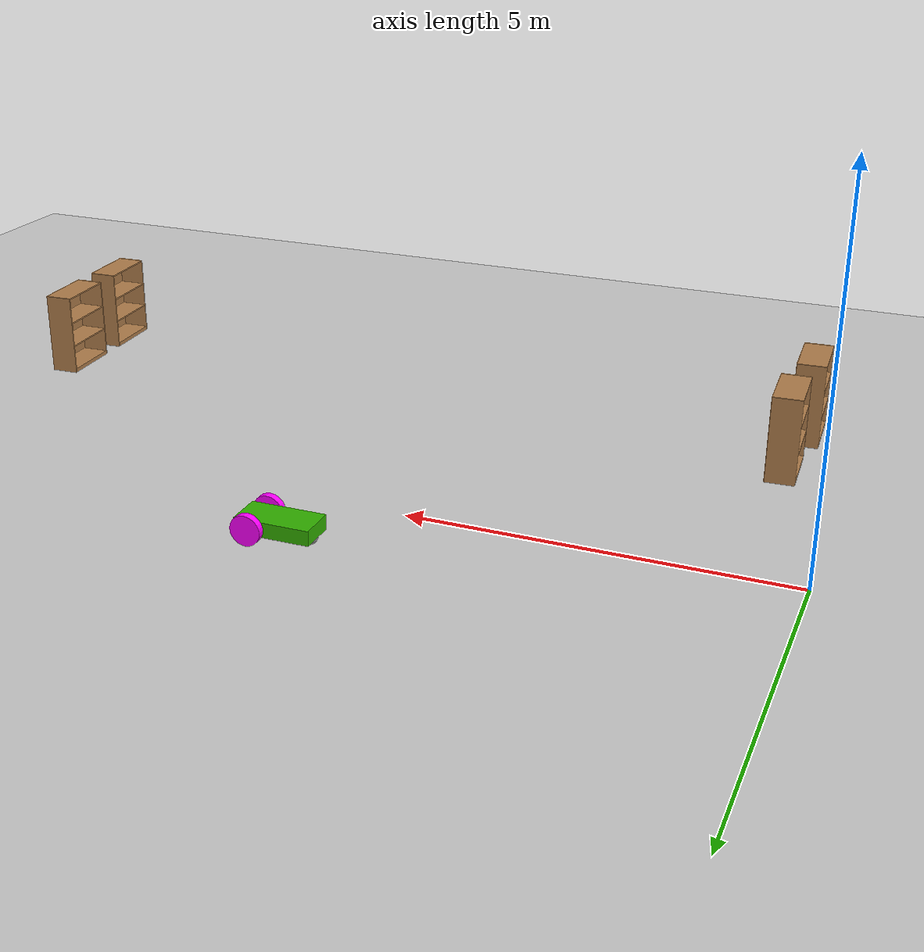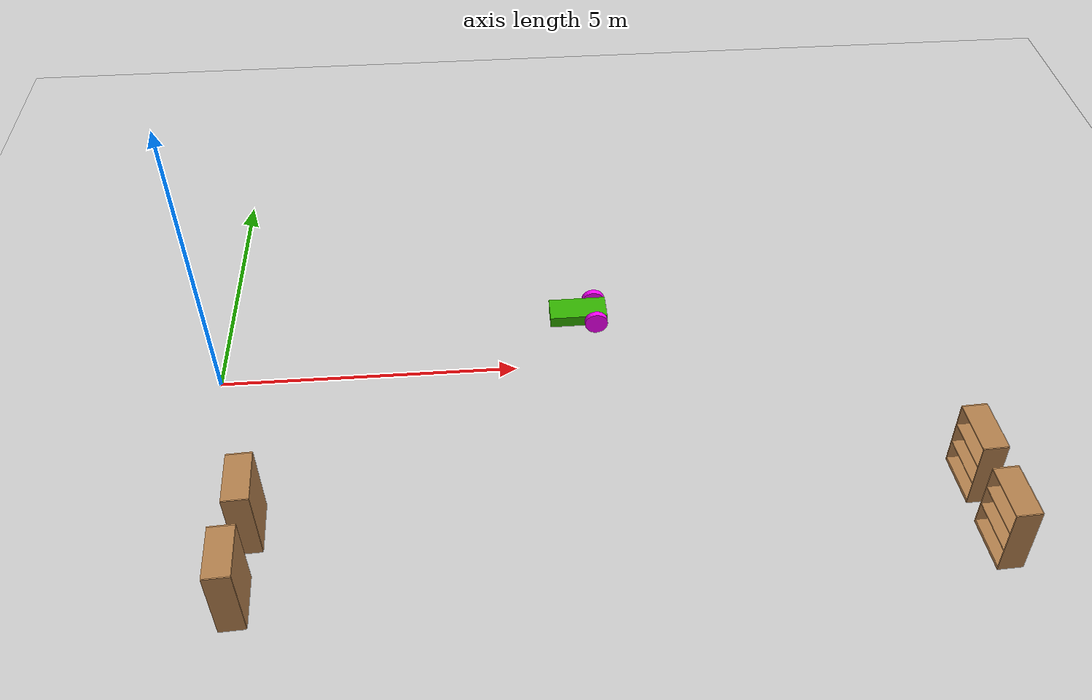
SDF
<sdf version="1.6">
 <world name="default">
  <model name="ground_plane">
   <static>1</static>
   <link name="link">
    <collision name="collision">
     <geometry><plane><normal>0 0 1</normal><size>100 100</size></plane></geometry>
     <surface><friction><ode><mu>100</mu><mu2>50</mu2></ode></friction></surface>
    </collision>
    <visual name="visual">
     <cast_shadows>0</cast_shadows>
     <geometry><plane><normal>0 0 1</normal><size>100 100</size></plane></geometry>
     <material>
      <script><uri>file://media/materials/scripts/gazebo.material</uri><name>Gazebo/Grey</name></script>
     </material>
    </visual>
   </link>
  </model>
  <model name="bookshelf">
   <static>1</static>
   <link name="link">
    <inertial><mass>1</mass></inertial>
    <collision name="back">
     <pose>0 0.005 0.6 0 -0 0</pose>
     <geometry><box><size>0.9 0.01 1.2</size></box></geometry>
    </collision>
    <visual name="visual1">
     <pose>0 0.005 0.6 0 -0 0</pose>
     <geometry><box><size>0.9 0.01 1.2</size></box></geometry>
     <material>
      <script><uri>file://media/materials/scripts/gazebo.material</uri><name>Gazebo/Wood</name></script>
     </material>
    </visual>
    <collision name="left_side">
     <pose>0.45 -0.195 0.6 0 -0 0</pose>
     <geometry><box><size>0.02 0.4 1.2</size></box></geometry>
    </collision>
    <visual name="visual2">
     <pose>0.45 -0.195 0.6 0 -0 0</pose>
     <geometry><box><size>0.02 0.4 1.2</size></box></geometry>
     <material>
      <script><uri>file://media/materials/scripts/gazebo.material</uri><name>Gazebo/Wood</name></script>
     </material>
    </visual>
    <collision name="right_side">
     <pose>-0.45 -0.195 0.6 0 -0 0</pose>
     <geometry><box><size>0.02 0.4 1.2</size></box></geometry>
    </collision>
    <visual name="visual3">
     <pose>-0.45 -0.195 0.6 0 -0 0</pose>
     <geometry><box><size>0.02 0.4 1.2</size></box></geometry>
     <material>
      <script><uri>file://media/materials/scripts/gazebo.material</uri><name>Gazebo/Wood</name></script>
     </material>
    </visual>
    <collision name="bottom">
     <pose>0 -0.195 0.03 0 -0 0</pose>
     <geometry><box><size>0.88 0.4 0.06</size></box></geometry>
    </collision>
    <visual name="visual4">
     <pose>0 -0.195 0.03 0 -0 0</pose>
     <geometry><box><size>0.88 0.4 0.06</size></box></geometry>
     <material>
      <script><uri>file://media/materials/scripts/gazebo.material</uri><name>Gazebo/Wood</name></script>
     </material>
    </visual>
    <collision name="top">
     <pose>0 -0.195 1.19 0 -0 0</pose>
     <geometry><box><size>0.88 0.4 0.02</size></box></geometry>
    </collision>
    <visual name="visual5">
     <pose>0 -0.195 1.19 0 -0 0</pose>
     <geometry><box><size>0.88 0.4 0.02</size></box></geometry>
     <material>
      <script><uri>file://media/materials/scripts/gazebo.material</uri><name>Gazebo/Wood</name></script>
     </material>
    </visual>
    <collision name="low_shelf">
     <pose>0 -0.195 0.43 0 -0 0</pose>
     <geometry><box><size>0.88 0.4 0.02</size></box></geometry>
    </collision>
    <visual name="visual6">
     <pose>0 -0.195 0.43 0 -0 0</pose>
     <geometry><box><size>0.88 0.4 0.02</size></box></geometry>
     <material>
      <script><uri>file://media/materials/scripts/gazebo.material</uri><name>Gazebo/Wood</name></script>
     </material>
    </visual>
    <collision name="high_shelf">
     <pose>0 -0.195 0.8 0 -0 0</pose>
     <geometry><box><size>0.88 0.4 0.02</size></box></geometry>
    </collision>
    <visual name="visual7">
     <pose>0 -0.195 0.8 0 -0 0</pose>
     <geometry><box><size>0.88 0.4 0.02</size></box></geometry>
     <material>
      <script><uri>file://media/materials/scripts/gazebo.material</uri><name>Gazebo/Wood</name></script>
     </material>
    </visual>
   </link>
   <pose>0.980106 -4.53001 0 0 0 -1.52246</pose>
  </model>
  <model name="bookshelf_clone">
   <static>1</static>
   <link name="link">
    <inertial><mass>1</mass></inertial>
    <collision name="back">
     <pose>0 0.005 0.6 0 -0 0</pose>
     <geometry><box><size>0.9 0.01 1.2</size></box></geometry>
    </collision>
    <visual name="visual1">
     <pose>0 0.005 0.6 0 -0 0</pose>
     <geometry><box><size>0.9 0.01 1.2</size></box></geometry>
     <material>
      <script><uri>file://media/materials/scripts/gazebo.material</uri><name>Gazebo/Wood</name></script>
     </material>
    </visual>
    <collision name="left_side">
     <pose>0.45 -0.195 0.6 0 -0 0</pose>
     <geometry><box><size>0.02 0.4 1.2</size></box></geometry>
    </collision>
    <visual name="visual2">
     <pose>0.45 -0.195 0.6 0 -0 0</pose>
     <geometry><box><size>0.02 0.4 1.2</size></box></geometry>
     <material>
      <script><uri>file://media/materials/scripts/gazebo.material</uri><name>Gazebo/Wood</name></script>
     </material>
    </visual>
    <collision name="right_side">
     <pose>-0.45 -0.195 0.6 0 -0 0</pose>
     <geometry><box><size>0.02 0.4 1.2</size></box></geometry>
    </collision>
    <visual name="visual3">
     <pose>-0.45 -0.195 0.6 0 -0 0</pose>
     <geometry><box><size>0.02 0.4 1.2</size></box></geometry>
     <material>
      <script><uri>file://media/materials/scripts/gazebo.material</uri><name>Gazebo/Wood</name></script>
     </material>
    </visual>
    <collision name="bottom">
     <pose>0 -0.195 0.03 0 -0 0</pose>
     <geometry><box><size>0.88 0.4 0.06</size></box></geometry>
    </collision>
    <visual name="visual4">
     <pose>0 -0.195 0.03 0 -0 0</pose>
     <geometry><box><size>0.88 0.4 0.06</size></box></geometry>
     <material>
      <script><uri>file://media/materials/scripts/gazebo.material</uri><name>Gazebo/Wood</name></script>
     </material>
    </visual>
    <collision name="top">
     <pose>0 -0.195 1.19 0 -0 0</pose>
     <geometry><box><size>0.88 0.4 0.02</size></box></geometry>
    </collision>
    <visual name="visual5">
     <pose>0 -0.195 1.19 0 -0 0</pose>
     <geometry><box><size>0.88 0.4 0.02</size></box></geometry>
     <material>
      <script><uri>file://media/materials/scripts/gazebo.material</uri><name>Gazebo/Wood</name></script>
     </material>
    </visual>
    <collision name="low_shelf">
     <pose>0 -0.195 0.43 0 -0 0</pose>
     <geometry><box><size>0.88 0.4 0.02</size></box></geometry>
    </collision>
    <visual name="visual6">
     <pose>0 -0.195 0.43 0 -0 0</pose>
     <geometry><box><size>0.88 0.4 0.02</size></box></geometry>
     <material>
      <script><uri>file://media/materials/scripts/gazebo.material</uri><name>Gazebo/Wood</name></script>
     </material>
    </visual>
    <collision name="high_shelf">
     <pose>0 -0.195 0.8 0 -0 0</pose>
     <geometry><box><size>0.88 0.4 0.02</size></box></geometry>
    </collision>
    <visual name="visual7">
     <pose>0 -0.195 0.8 0 -0 0</pose>
     <geometry><box><size>0.88 0.4 0.02</size></box></geometry>
     <material>
      <script><uri>file://media/materials/scripts/gazebo.material</uri><name>Gazebo/Wood</name></script>
     </material>
    </visual>
   </link>
   <pose>1.06301 -3.18048 0 0 0 -1.52246</pose>
  </model>
  <model name="bookshelf_clone_0">
   <static>1</static>
   <link name="link">
    <inertial><mass>1</mass></inertial>
    <collision name="back">
     <pose>0 0.005 0.6 0 -0 0</pose>
     <geometry><box><size>0.9 0.01 1.2</size></box></geometry>
    </collision>
    <visual name="visual1">
     <pose>0 0.005 0.6 0 -0 0</pose>
     <geometry><box><size>0.9 0.01 1.2</size></box></geometry>
     <material>
      <script><uri>file://media/materials/scripts/gazebo.material</uri><name>Gazebo/Wood</name></script>
     </material>
    </visual>
    <collision name="left_side">
     <pose>0.45 -0.195 0.6 0 -0 0</pose>
     <geometry><box><size>0.02 0.4 1.2</size></box></geometry>
    </collision>
    <visual name="visual2">
     <pose>0.45 -0.195 0.6 0 -0 0</pose>
     <geometry><box><size>0.02 0.4 1.2</size></box></geometry>
     <material>
      <script><uri>file://media/materials/scripts/gazebo.material</uri><name>Gazebo/Wood</name></script>
     </material>
    </visual>
    <collision name="right_side">
     <pose>-0.45 -0.195 0.6 0 -0 0</pose>
     <geometry><box><size>0.02 0.4 1.2</size></box></geometry>
    </collision>
    <visual name="visual3">
     <pose>-0.45 -0.195 0.6 0 -0 0</pose>
     <geometry><box><size>0.02 0.4 1.2</size></box></geometry>
     <material>
      <script><uri>file://media/materials/scripts/gazebo.material</uri><name>Gazebo/Wood</name></script>
     </material>
    </visual>
    <collision name="bottom">
     <pose>0 -0.195 0.03 0 -0 0</pose>
     <geometry><box><size>0.88 0.4 0.06</size></box></geometry>
    </collision>
    <visual name="visual4">
     <pose>0 -0.195 0.03 0 -0 0</pose>
     <geometry><box><size>0.88 0.4 0.06</size></box></geometry>
     <material>
      <script><uri>file://media/materials/scripts/gazebo.material</uri><name>Gazebo/Wood</name></script>
     </material>
    </visual>
    <collision name="top">
     <pose>0 -0.195 1.19 0 -0 0</pose>
     <geometry><box><size>0.88 0.4 0.02</size></box></geometry>
    </collision>
    <visual name="visual5">
     <pose>0 -0.195 1.19 0 -0 0</pose>
     <geometry><box><size>0.88 0.4 0.02</size></box></geometry>
     <material>
      <script><uri>file://media/materials/scripts/gazebo.material</uri><name>Gazebo/Wood</name></script>
     </material>
    </visual>
    <collision name="low_shelf">
     <pose>0 -0.195 0.43 0 -0 0</pose>
     <geometry><box><size>0.88 0.4 0.02</size></box></geometry>
    </collision>
    <visual name="visual6">
     <pose>0 -0.195 0.43 0 -0 0</pose>
     <geometry><box><size>0.88 0.4 0.02</size></box></geometry>
     <material>
      <script><uri>file://media/materials/scripts/gazebo.material</uri><name>Gazebo/Wood</name></script>
     </material>
    </visual>
    <collision name="high_shelf">
     <pose>0 -0.195 0.8 0 -0 0</pose>
     <geometry><box><size>0.88 0.4 0.02</size></box></geometry>
    </collision>
    <visual name="visual7">
     <pose>0 -0.195 0.8 0 -0 0</pose>
     <geometry><box><size>0.88 0.4 0.02</size></box></geometry>
     <material>
      <script><uri>file://media/materials/scripts/gazebo.material</uri><name>Gazebo/Wood</name></script>
     </material>
    </visual>
   </link>
   <pose>12.1841 -4.34916 0 0 0 -1.52246</pose>
  </model>
  <model name="bookshelf_clone_1">
   <static>1</static>
   <link name="link">
    <inertial><mass>1</mass></inertial>
    <collision name="back">
     <pose>0 0.005 0.6 0 -0 0</pose>
     <geometry><box><size>0.9 0.01 1.2</size></box></geometry>
    </collision>
    <visual name="visual1">
     <pose>0 0.005 0.6 0 -0 0</pose>
     <geometry><box><size>0.9 0.01 1.2</size></box></geometry>
     <material>
      <script><uri>file://media/materials/scripts/gazebo.material</uri><name>Gazebo/Wood</name></script>
     </material>
    </visual>
    <collision name="left_side">
     <pose>0.45 -0.195 0.6 0 -0 0</pose>
     <geometry><box><size>0.02 0.4 1.2</size></box></geometry>
    </collision>
    <visual name="visual2">
     <pose>0.45 -0.195 0.6 0 -0 0</pose>
     <geometry><box><size>0.02 0.4 1.2</size></box></geometry>
     <material>
      <script><uri>file://media/materials/scripts/gazebo.material</uri><name>Gazebo/Wood</name></script>
     </material>
    </visual>
    <collision name="right_side">
     <pose>-0.45 -0.195 0.6 0 -0 0</pose>
     <geometry><box><size>0.02 0.4 1.2</size></box></geometry>
    </collision>
    <visual name="visual3">
     <pose>-0.45 -0.195 0.6 0 -0 0</pose>
     <geometry><box><size>0.02 0.4 1.2</size></box></geometry>
     <material>
      <script><uri>file://media/materials/scripts/gazebo.material</uri><name>Gazebo/Wood</name></script>
     </material>
    </visual>
    <collision name="bottom">
     <pose>0 -0.195 0.03 0 -0 0</pose>
     <geometry><box><size>0.88 0.4 0.06</size></box></geometry>
    </collision>
    <visual name="visual4">
     <pose>0 -0.195 0.03 0 -0 0</pose>
     <geometry><box><size>0.88 0.4 0.06</size></box></geometry>
     <material>
      <script><uri>file://media/materials/scripts/gazebo.material</uri><name>Gazebo/Wood</name></script>
     </material>
    </visual>
    <collision name="top">
     <pose>0 -0.195 1.19 0 -0 0</pose>
     <geometry><box><size>0.88 0.4 0.02</size></box></geometry>
    </collision>
    <visual name="visual5">
     <pose>0 -0.195 1.19 0 -0 0</pose>
     <geometry><box><size>0.88 0.4 0.02</size></box></geometry>
     <material>
      <script><uri>file://media/materials/scripts/gazebo.material</uri><name>Gazebo/Wood</name></script>
     </material>
    </visual>
    <collision name="low_shelf">
     <pose>0 -0.195 0.43 0 -0 0</pose>
     <geometry><box><size>0.88 0.4 0.02</size></box></geometry>
    </collision>
    <visual name="visual6">
     <pose>0 -0.195 0.43 0 -0 0</pose>
     <geometry><box><size>0.88 0.4 0.02</size></box></geometry>
     <material>
      <script><uri>file://media/materials/scripts/gazebo.material</uri><name>Gazebo/Wood</name></script>
     </material>
    </visual>
    <collision name="high_shelf">
     <pose>0 -0.195 0.8 0 -0 0</pose>
     <geometry><box><size>0.88 0.4 0.02</size></box></geometry>
    </collision>
    <visual name="visual7">
     <pose>0 -0.195 0.8 0 -0 0</pose>
     <geometry><box><size>0.88 0.4 0.02</size></box></geometry>
     <material>
      <script><uri>file://media/materials/scripts/gazebo.material</uri><name>Gazebo/Wood</name></script>
     </material>
    </visual>
   </link>
   <pose>12.1324 -3.07267 0 0 0 -1.52246</pose>
  </model>
  <model name="diffrobot_0">
   <link name="link_0">
    <pose>-0.05 -0 0.025 0 -0 0</pose>
    <inertial>
     <mass>1</mass>
     <inertia>
      <ixx>0.166667</ixx>
      <ixy>0</ixy>
      <ixz>0</ixz>
      <iyy>0.166667</iyy>
      <iyz>0</iyz>
      <izz>0.166667</izz>
     </inertia>
    </inertial>
    <visual name="visual">
     <geometry><box><size>1 0.5 0.2</size></box></geometry>
     <material>
      <lighting>1</lighting>
      <script><uri>file://media/materials/scripts/gazebo.material</uri><name>Gazebo/Grey</name></script>
      <ambient>0.2 0.7 0 1</ambient>
      <diffuse>0.2 0.7 0 1</diffuse>
      <specular>0.2 0.7 0 1</specular>
      <emissive>0.2 0.7 0 1</emissive>
      <shader type="vertex"><normal_map>__default__</normal_map></shader>
     </material>
    </visual>
    <collision name="collision">
     <geometry><box><size>1 0.5 0.2</size></box></geometry>
     <surface>
      <friction>
       <ode><mu>1</mu><mu2>1</mu2><fdir1>0 0 0</fdir1><slip1>0</slip1><slip2>0</slip2></ode>
       <torsional>
        <coefficient>1</coefficient>
        <patch_radius>0</patch_radius>
        <surface_radius>0</surface_radius>
        <use_patch_radius>1</use_patch_radius>
        <ode><slip>0</slip></ode>
       </torsional>
      </friction>
      <bounce><restitution_coefficient>0</restitution_coefficient><threshold>1e+06</threshold></bounce>
      <contact>
       <collide_without_contact>0</collide_without_contact>
       <collide_without_contact_bitmask>1</collide_without_contact_bitmask>
       <collide_bitmask>1</collide_bitmask>
       <ode>
        <soft_cfm>0</soft_cfm>
        <soft_erp>0.2</soft_erp>
        <kp>1e+13</kp>
        <kd>1</kd>
        <max_vel>0.01</max_vel>
        <min_depth>0</min_depth>
       </ode>
       <bullet>
        <split_impulse>1</split_impulse>
        <split_impulse_penetration_threshold>-0.01</split_impulse_penetration_threshold>
        <soft_cfm>0</soft_cfm>
        <soft_erp>0.2</soft_erp>
        <kp>1e+13</kp>
        <kd>1</kd>
       </bullet>
      </contact>
     </surface>
    </collision>
   </link>
   <link name="link_1">
    <pose>0.25 -0.300019 0.025 1.5707 -0 0</pose>
    <inertial>
     <mass>1</mass>
     <inertia><ixx>0.145833</ixx><ixy>0</ixy><ixz>0</ixz><iyy>0.145833</iyy><iyz>0</iyz><izz>0.125</izz></inertia>
    </inertial>
    <visual name="visual">
     <geometry><cylinder><radius>0.2</radius><length>0.1</length></cylinder></geometry>
     <material>
      <lighting>1</lighting>
      <script><uri>file://media/materials/scripts/gazebo.material</uri><name>Gazebo/Grey</name></script>
      <ambient>1 0 1 1</ambient>
      <diffuse>1 0 1 1</diffuse>
      <specular>1 0 1 1</specular>
      <emissive>1 0 1 1</emissive>
      <shader type="vertex"><normal_map>__default__</normal_map></shader>
     </material>
    </visual>
    <collision name="collision">
     <geometry><cylinder><radius>0.2</radius><length>0.1</length></cylinder></geometry>
     <surface>
      <friction>
       <ode><mu>1</mu><mu2>1</mu2><fdir1>0 0 0</fdir1><slip1>0</slip1><slip2>0</slip2></ode>
       <torsional>
        <coefficient>1</coefficient>
        <patch_radius>0</patch_radius>
        <surface_radius>0</surface_radius>
        <use_patch_radius>1</use_patch_radius>
        <ode><slip>0</slip></ode>
       </torsional>
      </friction>
      <bounce><restitution_coefficient>0</restitution_coefficient><threshold>1e+06</threshold></bounce>
      <contact>
       <collide_without_contact>0</collide_without_contact>
       <collide_without_contact_bitmask>1</collide_without_contact_bitmask>
       <collide_bitmask>1</collide_bitmask>
       <ode>
        <soft_cfm>0</soft_cfm>
        <soft_erp>0.2</soft_erp>
        <kp>1e+13</kp>
        <kd>1</kd>
        <max_vel>0.01</max_vel>
        <min_depth>0</min_depth>
       </ode>
       <bullet>
        <split_impulse>1</split_impulse>
        <split_impulse_penetration_threshold>-0.01</split_impulse_penetration_threshold>
        <soft_cfm>0</soft_cfm>
        <soft_erp>0.2</soft_erp>
        <kp>1e+13</kp>
        <kd>1</kd>
       </bullet>
      </contact>
     </surface>
    </collision>
   </link>
   <link name="link_1_clone">
    <pose>0.25 0.300019 0.025 1.5707 -0 0</pose>
    <inertial>
     <mass>1</mass>
     <inertia><ixx>0.145833</ixx><ixy>0</ixy><ixz>0</ixz><iyy>0.145833</iyy><iyz>0</iyz><izz>0.125</izz></inertia>
    </inertial>
    <visual name="visual">
     <geometry><cylinder><radius>0.2</radius><length>0.1</length></cylinder></geometry>
     <material>
      <lighting>1</lighting>
      <script><uri>file://media/materials/scripts/gazebo.material</uri><name>Gazebo/Grey</name></script>
      <ambient>1 0 1 1</ambient>
      <diffuse>1 0 1 1</diffuse>
      <specular>1 0 1 1</specular>
      <emissive>1 0 1 1</emissive>
      <shader type="vertex"><normal_map>__default__</normal_map></shader>
     </material>
    </visual>
    <collision name="collision">
     <geometry><cylinder><radius>0.2</radius><length>0.1</length></cylinder></geometry>
     <surface>
      <friction>
       <ode><mu>1</mu><mu2>1</mu2><fdir1>0 0 0</fdir1><slip1>0</slip1><slip2>0</slip2></ode>
       <torsional>
        <coefficient>1</coefficient>
        <patch_radius>0</patch_radius>
        <surface_radius>0</surface_radius>
        <use_patch_radius>1</use_patch_radius>
        <ode><slip>0</slip></ode>
       </torsional>
      </friction>
      <bounce><restitution_coefficient>0</restitution_coefficient><threshold>1e+06</threshold></bounce>
      <contact>
       <collide_without_contact>0</collide_without_contact>
       <collide_without_contact_bitmask>1</collide_without_contact_bitmask>
       <collide_bitmask>1</collide_bitmask>
       <ode>
        <soft_cfm>0</soft_cfm>
        <soft_erp>0.2</soft_erp>
        <kp>1e+13</kp>
        <kd>1</kd>
        <max_vel>0.01</max_vel>
        <min_depth>0</min_depth>
       </ode>
       <bullet>
        <split_impulse>1</split_impulse>
        <split_impulse_penetration_threshold>-0.01</split_impulse_penetration_threshold>
        <soft_cfm>0</soft_cfm>
        <soft_erp>0.2</soft_erp>
        <kp>1e+13</kp>
        <kd>1</kd>
       </bullet>
      </contact>
     </surface>
    </collision>
   </link>
   <link name="link_2">
    <pose>-0.45 0 -0.075 0 -0 0</pose>
    <inertial>
     <mass>1</mass>
     <inertia><ixx>0.1</ixx><ixy>0</ixy><ixz>0</ixz><iyy>0.1</iyy><iyz>0</iyz><izz>0.1</izz></inertia>
    </inertial>
    <visual name="visual">
     <geometry><sphere><radius>0.1</radius></sphere></geometry>
     <material>
      <lighting>1</lighting>
      <script><uri>file://media/materials/scripts/gazebo.material</uri><name>Gazebo/Grey</name></script>
      <ambient>0.3 0.3 0.3 1</ambient>
      <diffuse>0.7 0.7 0.7 1</diffuse>
      <specular>0.01 0.01 0.01 1</specular>
      <emissive>0 0 0 1</emissive>
      <shader type="vertex"><normal_map>__default__</normal_map></shader>
     </material>
    </visual>
    <collision name="collision">
     <geometry><sphere><radius>0.1</radius></sphere></geometry>
     <surface>
      <friction>
       <ode><mu>1</mu><mu2>1</mu2><fdir1>0 0 0</fdir1><slip1>0</slip1><slip2>0</slip2></ode>
       <torsional>
        <coefficient>1</coefficient>
        <patch_radius>0</patch_radius>
        <surface_radius>0</surface_radius>
        <use_patch_radius>1</use_patch_radius>
        <ode><slip>0</slip></ode>
       </torsional>
      </friction>
      <bounce><restitution_coefficient>0</restitution_coefficient><threshold>1e+06</threshold></bounce>
      <contact>
       <collide_without_contact>0</collide_without_contact>
       <collide_without_contact_bitmask>1</collide_without_contact_bitmask>
       <collide_bitmask>1</collide_bitmask>
       <ode>
        <soft_cfm>0</soft_cfm>
        <soft_erp>0.2</soft_erp>
        <kp>1e+13</kp>
        <kd>1</kd>
        <max_vel>0.01</max_vel>
        <min_depth>0</min_depth>
       </ode>
       <bullet>
        <split_impulse>1</split_impulse>
        <split_impulse_penetration_threshold>-0.01</split_impulse_penetration_threshold>
        <soft_cfm>0</soft_cfm>
        <soft_erp>0.2</soft_erp>
        <kp>1e+13</kp>
        <kd>1</kd>
       </bullet>
      </contact>
     </surface>
    </collision>
   </link>
   <joint name="link_0_JOINT_0" type="revolute">
    <parent>link_0</parent>
    <child>link_1</child>
    <axis>
     <xyz>0 0 1</xyz>
     <use_parent_model_frame>0</use_parent_model_frame>
     <limit>
      <lower>-1.79769e+308</lower>
      <upper>1.79769e+308</upper>
      <effort>-1</effort>
      <velocity>-1</velocity>
     </limit>
     <dynamics>
      <spring_reference>0</spring_reference>
      <spring_stiffness>0</spring_stiffness>
      <damping>0</damping>
      <friction>0</friction>
     </dynamics>
    </axis>
    <physics>
     <ode><limit><cfm>0</cfm><erp>0.2</erp></limit><suspension><cfm>0</cfm><erp>0.2</erp></suspension></ode>
    </physics>
   </joint>
   <joint name="link_0_JOINT_1" type="revolute">
    <parent>link_0</parent>
    <child>link_1_clone</child>
    <axis>
     <xyz>0 0 1</xyz>
     <use_parent_model_frame>0</use_parent_model_frame>
     <limit>
      <lower>-1.79769e+308</lower>
      <upper>1.79769e+308</upper>
      <effort>-1</effort>
      <velocity>-1</velocity>
     </limit>
     <dynamics>
      <spring_reference>0</spring_reference>
      <spring_stiffness>0</spring_stiffness>
      <damping>0</damping>
      <friction>0</friction>
     </dynamics>
    </axis>
    <physics>
     <ode><limit><cfm>0</cfm><erp>0.2</erp></limit><suspension><cfm>0</cfm><erp>0.2</erp></suspension></ode>
    </physics>
   </joint>
   <joint name="link_0_JOINT_2" type="ball">
    <parent>link_0</parent>
    <child>link_2</child>
    <physics>
     <ode><limit><cfm>0</cfm><erp>0.2</erp></limit><suspension><cfm>0</cfm><erp>0.2</erp></suspension></ode>
    </physics>
   </joint>
   <static>0</static>
   <pose>6.19905 1.1574 0.175 1e-06 -1.9e-05 0.009089</pose>
  </model>
 </world>
</sdf>
